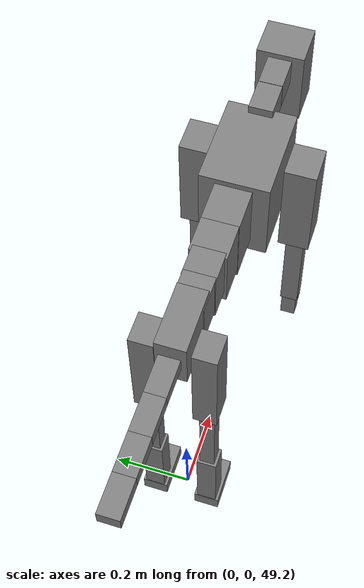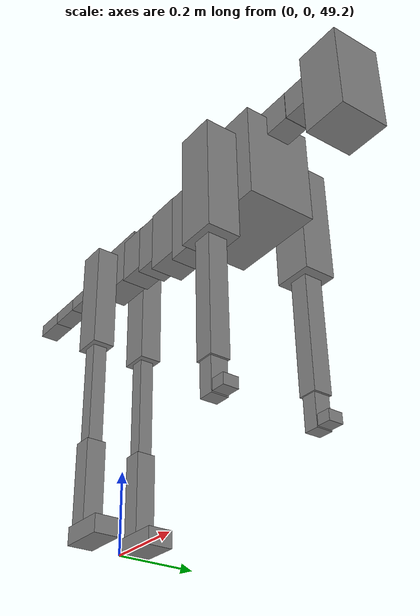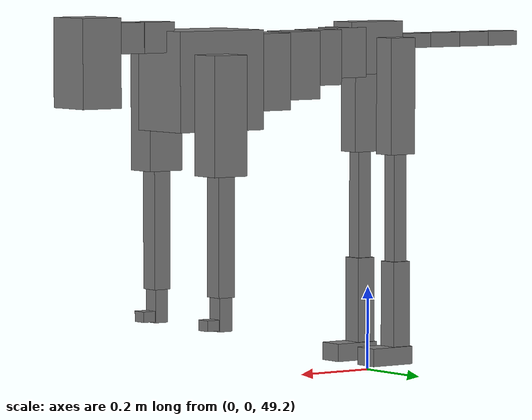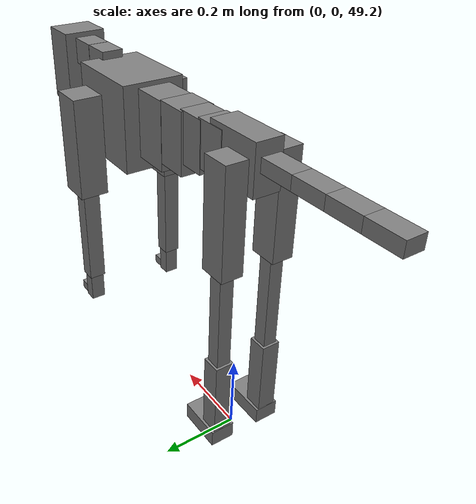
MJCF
<mujoco model="dog">

    <default>
        <joint armature="0.02" stiffness="1" damping="0.2" limited="true"/>
        <geom condim="3" friction="1 0.05 0.05" margin="0.01"/>
        <motor ctrllimited="true" ctrlrange="-1.0 1.0" forcelimited="true" gear="50"/>
    </default>

    <compiler inertiafromgeom="true" angle="radian"/>

    <option timestep="0.016" iterations="50" tolerance="1e-10" solver="Newton" jacobian="dense" cone="pyramidal"/>

    <size nconmax="20000" njmax="60000" nstack="5000000"/>
    <visual>
        <map force="0.1" zfar="30"/>
        <rgba haze="0.15 0.25 0.35 1"/>
        <quality shadowsize="2048"/>
        <global offwidth="800" offheight="800"/>
    </visual>

    <asset>
        <texture type="skybox" builtin="gradient" rgb1="0.3 0.5 0.7" rgb2="0 0 0" width="512" height="512"/>
        <texture name="texplane" type="2d" builtin="checker" rgb1=".2 .3 .4" rgb2=".1 0.15 0.2" width="512" height="512"
                 mark="cross" markrgb=".8 .8 .8"/>
        <texture name="texgeom" type="cube" builtin="flat" mark="cross" width="127" height="1278" rgb1="0.8 0.6 0.4"
                 rgb2="0.8 0.6 0.4" markrgb="1 1 1" random="0.01"/>

        <material name="matplane" reflectance="0.3" texture="texplane" texrepeat="1 1" texuniform="true"/>
        <material name="matgeom" texture="texgeom" texuniform="true" rgba="0.8 0.6 .4 1"/>
    </asset>

    <worldbody>
        <geom name="floor" pos="0 0 0" size="0 0 .25" type="plane" material="matplane" condim="3"/>

        <light directional="false" diffuse=".2 .2 .2" specular="0 0 0" pos="0 0 5" dir="0 0 -1" castshadow="false"/>
        <light mode="targetbodycom" target="torso" directional="false" diffuse=".8 .8 .8" specular="0.3 0.3 0.3"
               pos="0 0 4.0" dir="0 0 -1"/>

        <body name="root" pos="0 0 50">
            <freejoint name="root_1"/>
            <geom type="box" pos="0 0 -0.02" size="0.0774  0.0358  0.063" density="2030"/>

            <body name="spine1" pos="0.054 0 0">
                <joint name="spine1_y" axis="0 1 0" range="0 0.7" limited="true"/>
                <geom type="box" pos="0.02375 0 -0.03" size="0.04375  0.0375  0.05985" density="2030"/>

                <body name="spine2" pos="0.0612 0 0">
                    <joint name="spine2_y" axis="0 1 0" range="-0.15 0.15" limited="true"/>
                    <geom type="box" pos="0.03555  0  -0.04" size="0.04055  0.039  0.06615" density="2030"/>

                    <body name="spine3" pos="0.0730 0 0">
                        <joint name="spine3_y" axis="0 1 0" range="-0.15 0.15" limited="true"/>
                        <geom type="box" pos="0.03555  0  -0.057" size="0.04555  0.0445  0.081" density="2030"/>

                        <body name="spine4" pos="0.0780 0 0">
                            <joint name="spine4_y" axis="0 1 0" range="-0.15 0.15" limited="true"/>
                            <geom type="box" pos="0.05265  0  -0.07" size="0.05265  0.045  0.09135" density="2030"/>

                            <body name="torso" pos="0.1082 0 0">
                                <joint name="torso_y" axis="0 1 0" range="-0.15 0.15" limited="true"/>
                                <geom type="box" pos="0.11925  0  -0.085" size="0.11925  0.085  0.11745"
                                      density="2030"/>

                                <body name="neck1" pos="0.2160  0   0.0180">
                                    <joint name="neck1_y" axis="0 1 0" range="-1.2  -1" limited="true"/>
                                    <geom type="box" pos="0.0423  0  0" size="0.0423  0.03  0.036" density="2325"/>

                                    <body name="neck2" pos="0.0853  0  0">
                                        <joint name="neck2_y" axis="0 1 0" range="0.1  0" limited="true"/>
                                        <geom type="box" pos="0.0423  0  0" size="0.0423  0.03  0.036" density="2325"/>

                                        <body name="head" pos="0.0853  0  0">
                                            <joint name="head_y" axis="0 1 0" range="-0.3  -0.2" limited="true"/>
                                            <geom type="box" pos="0.0531  0  -0.055" size="0.0531  0.06  0.1044"
                                                  density="4030"/>

                                        </body>
                                    </body>
                                </body>

                                <body name="front_shoulder" pos="0.156  0   -0.0480">
                                    <joint name="front_shoulder_y" axis="0 1 0" range="-1 1.5" limited="true"/>
                                    <geom type="box" pos="0 0.13 -0.1141" size="0.0462  0.0395  0.1407" density="1158"/>
                                    <geom type="box" pos="0 -0.13 -0.1141" size="0.0462  0.0395  0.1407"
                                          density="1158"/>

                                    <body name="front_elbow" pos="0  0  -0.2281">
                                        <joint name="front_elbow_y" axis="0 1 0" range="-2 0" limited="true"/>
                                        <geom type="box" pos="0 0.13 -0.1542" size="0.0226  0.0231  0.1542"
                                              density="1081"/>
                                        <geom type="box" pos="0 -0.13 -0.1542" size="0.0226  0.0231  0.1542"
                                              density="1081"/>

                                        <body name="front_wrist" pos="0  0  -0.3085">
                                            <joint name="front_wrist_y" axis="0 1 0" range="-0.2 0" limited="true"/>
                                            <geom type="box" pos="0 0.13 -0.0329" size="0.0177  0.0197  0.0460"
                                                  density="1664"/>
                                            <geom type="box" pos="0 -0.13 -0.0329" size="0.0177  0.0197  0.0460"
                                                  density="1664"/>

                                            <body name="front_finger_end" pos="0  0  -0.0657">
                                                <joint name="front_finger_y" axis="0 1 0" range="-0.4 1"
                                                       limited="true"/>
                                                <geom type="box" pos="0.0180  0.13  0.0023"
                                                      size="0.0331  0.0180  0.0127" density="1515"/>
                                                <geom type="box" pos="0.0180  -0.13  0.0023"
                                                      size="0.0331  0.0180  0.0127" density="1515"/>

                                            </body>

                                        </body>
                                    </body>
                                </body>

                            </body>
                        </body>
                    </body>
                </body>
            </body>

            <body name="back_hip" pos="-0.03 0 -0.018">
                <joint name="back_hip_y" axis="0 1 0" range="-1.5 0.3" limited="true"/>
                <geom type="box" pos="0 0.07 -0.1173" size="0.0364  0.0285  0.1401" density="1154"/>
                <geom type="box" pos="0 -0.07 -0.1173" size="0.0364  0.0285  0.1401" density="1154"/>

                <body name="back_knee" pos="0  0  -0.2346">
                    <joint name="back_knee_y" axis="0 1 0" range="0 2.8" limited="true"/>
                    <geom type="box" pos="0 0.07 -0.1460" size="0.0186  0.0183  0.1616" density="1227"/>
                    <geom type="box" pos="0 -0.07 -0.1460" size="0.0186  0.0183  0.1616" density="1227"/>

                    <body name="back_ankle" pos="0  0  -0.2920">
                        <joint name="back_ankle_y" axis="0 1 0" range="-2.2 0" limited="true"/>
                        <geom type="box" pos="0 0.07 -0.1043" size="0.0247  0.0247  0.1156" density="1284"/>
                        <geom type="box" pos="0 -0.07 -0.1043" size="0.0247  0.0247  0.1156" density="1284"/>

                        <body name="back_toe_end" pos="0  0  -0.2086">
                            <joint name="back_toe_y" axis="0 1 0" range="-0.4 1" limited="true"/>
                            <geom type="box" pos="0.0317  0.07  -0.0065" size="0.0582  0.0317  0.0215" density="1515"/>
                            <geom type="box" pos="0.0317  -0.07  -0.0065" size="0.0582  0.0317  0.0215" density="1515"/>

                        </body>
                    </body>
                </body>
            </body>

            <body name="tail1" pos="-0.074 0 -0.006">
                <joint name="tail1_y" axis="0 1 0" range="-0.2 0.2" limited="true"/>
                <geom type="box" pos="-0.0536  0  0" size="0.045  0.025  0.0175" density="1587"/>

                <body name="tail2" pos="-0.09 0 0">
                    <joint name="tail2_y" axis="0 1 0" range="-0.2 0.2" limited="true"/>
                    <geom type="box" pos="-0.0536  0  0" size="0.045  0.025  0.0175" density="1587"/>

                    <body name="tail3" pos="-0.09 0 0">
                        <joint name="tail3_y" axis="0 1 0" range="-0.2 0.2" limited="true"/>
                        <geom type="box" pos="-0.0536  0  0" size="0.045  0.025  0.0175" density="1587"/>

                        <body name="tail4" pos="-0.09 0 0">
                            <joint name="tail4_y" axis="0 1 0" range="-0.2 0.2" limited="true"/>
                            <geom type="box" pos="-0.0536  0  0" size="0.045  0.025  0.0175" density="1587"/>

                        </body>
                    </body>
                </body>
            </body>
        </body>
    </worldbody>

    <actuator>
        <motor joint="spine1_y" forcerange="-150 150     "/>
        <motor joint="spine2_y" forcerange="-150 150     "/>
        <motor joint="spine3_y" forcerange="-150 150     "/>
        <motor joint="spine4_y" forcerange="-150 150     "/>
        <motor joint="torso_y" forcerange="-150 150     "/>
        <motor joint="neck1_y" forcerange="-100 100       "/>
        <motor joint="neck2_y" forcerange="-100 100       "/>
        <motor joint="head_y" forcerange="-150 150       "/>
        <motor joint="front_shoulder_y" forcerange="-187.02 176.09"/>
        <motor joint="front_elbow_y" forcerange="-165.37 102.45"/>
        <motor joint="front_wrist_y" forcerange="-77.33 80.27"/>
        <motor joint="front_finger_y" forcerange="-24.90 31.28"/>
        <motor joint="back_hip_y" forcerange="-219.56 360.74"/>
        <motor joint="back_knee_y" forcerange="-200.40 266.38"/>
        <motor joint="back_angle_y" forcerange="-97.45 198.27"/>
        <motor joint="back_toe_y" forcerange="-126.94 46.86"/>
        <motor joint="tail1_y" forcerange="-50 50     "/>
        <motor joint="tail2_y" forcerange="-50 50     "/>
        <motor joint="tail3_y" forcerange="-50 50     "/>
        <motor joint="tail4_y" forcerange="-50 50     "/>
    </actuator>
</mujoco>
